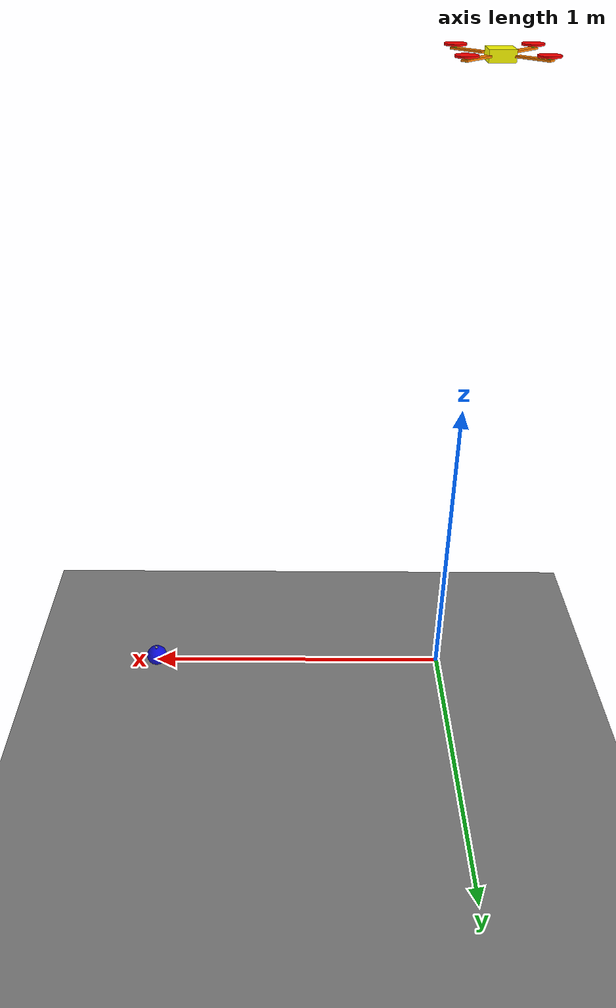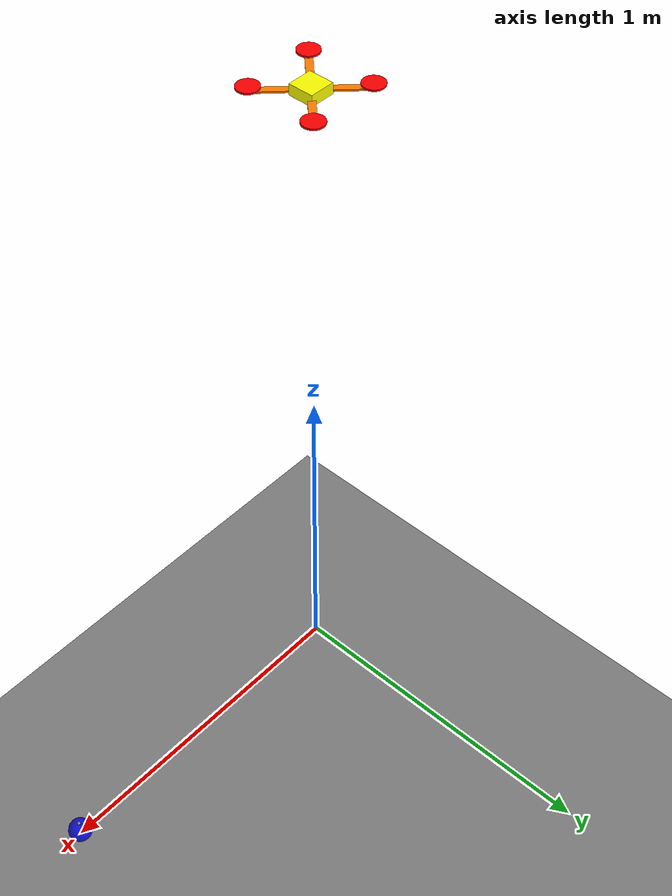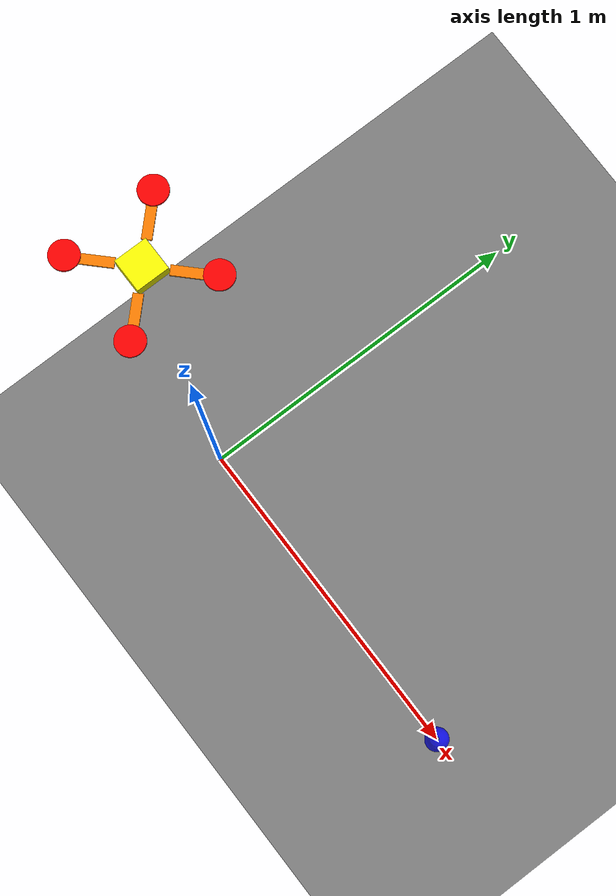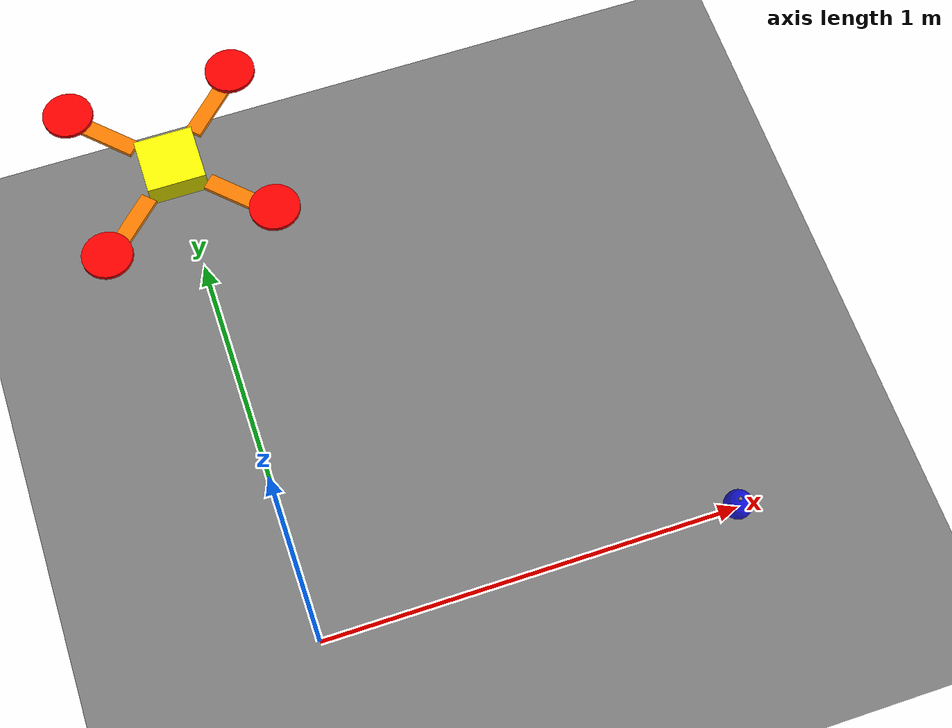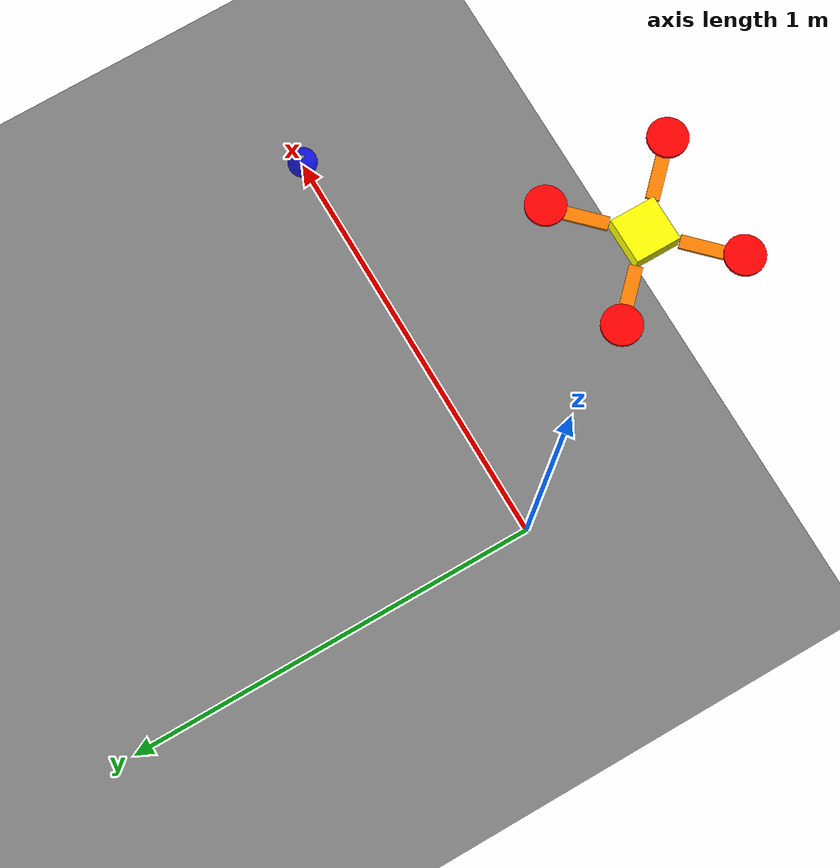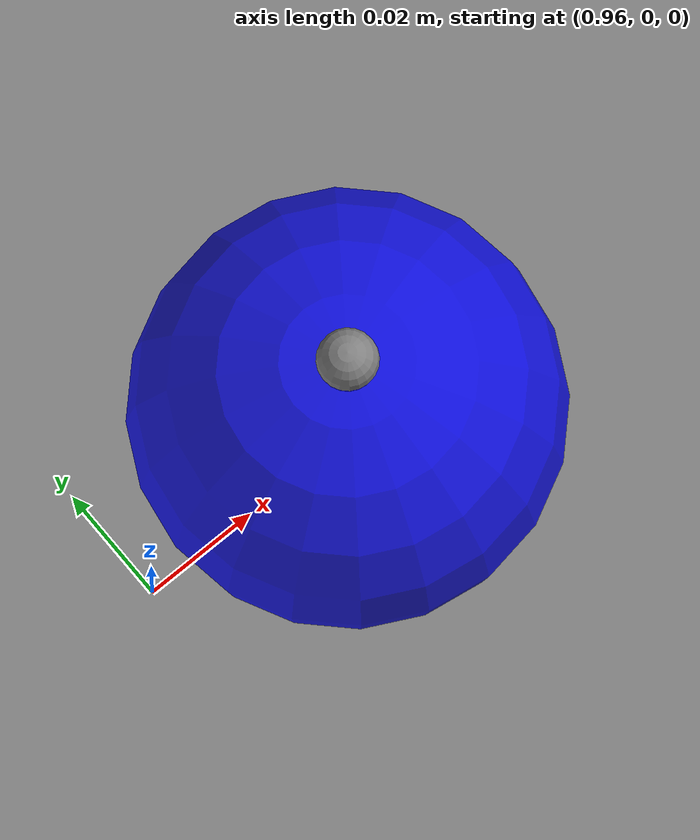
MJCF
<mujoco model="Quadrotor Acro Simulation">
  <compiler angle="radian" meshdir="." />

  <option timestep="0.003" gravity="0 0 0">
    <flag energy="enable" contact="enable"/>
  </option>

  <asset>
    <texture name="texchecker" type="2d" builtin="checker" width="512" height="512" rgb1="0.8 0.8 0.8" rgb2="0.2 0.2 0.2" />
    <material name="matchecker" texture="texchecker" texrepeat="4 4" reflectance="0.2" />
    <mesh name="drone_1_visual_mesh" file="raxl_assembly.obj" scale="0.001 0.001 0.001" />
  </asset>

  <worldbody>
    <light pos="0 0 1.5" dir="0 0 -1" directional="true"/>
    <geom name="floor" type="plane" size="10 10 0.1" material="matchecker" condim="3"/>

    <body name="drone_1" pos="0 0 2" euler="0 0 0">
      <joint name="drone_1" type="free" damping="0.001" armature="0" pos="0 0 0"/>

      <geom name="drone_1_core" type="box" size="0.035 0.035 0.015" rgba="1.0 1.0 0.0 1.0" mass="1.04"/>

      <geom name="drone_1_a00" type="box" pos=".071 0.071 0.0" size="0.05 0.01 0.0025" quat=".924 0 0 0.383" rgba="1 0.5 0 1.0" mass=".035"/>
      <geom name="drone_1_a10" type="box" pos=".071 -0.071 0.0" size="0.05 0.01 0.0025" quat=".383 0 0 0.924" rgba="1 0.5 0 1.0" mass=".035"/>
      <geom name="drone_1_a20" type="box" pos="-0.071 -0.071 0.0" size="0.05 0.01 0.0025" quat="-.383 0 0 0.924" rgba="1 0.5 0 1.0" mass=".035"/>
      <geom name="drone_1_a30" type="box" pos="-.071 0.071 0.0" size="0.05 0.01 0.0025" quat=".924 0 0 -0.383" rgba="1 0.5 0 1.0" mass=".035"/>

      <geom name="drone_1_thruster00" type="cylinder" pos="0.1 0.1 0.01" size="0.03 0.0025" rgba="1 0 0 1" mass=".015"/>
      <geom name="drone_1_thruster10" type="cylinder" pos="0.1 -0.1 0.01" size="0.03 0.0025" rgba="1 0 0 1" mass=".015"/>
      <geom name="drone_1_thruster20" type="cylinder" pos="-0.1 -0.1 0.01" size="0.03 0.0025" rgba="1 0 0 1" mass=".015"/>
      <geom name="drone_1_thruster30" type="cylinder" pos="-0.1 0.1 0.01" size="0.03 0.0025" rgba="1 0 0 1" mass=".015"/>

      <site name="drone_1_imu" pos="0 0 0"/>
      <site name="drone_1_thrust" type="box" pos="0 0 0" size="0.035 0.035 0.015" rgba="0 1 1 0"/>
      <site name="drone_1_rateX" type="box" pos="0 0 0" size="0.035 0.035 0.015" rgba="0 1 1 0"/>
      <site name="drone_1_rateY" type="box" pos="0 0 0" size="0.035 0.035 0.015" rgba="0 1 1 0"/>
      <site name="drone_1_rateZ" type="box" pos="0 0 0" size="0.035 0.035 0.015" rgba="0 1 1 0"/>

      <site name="drone_1_rotor1_site"
            type="sphere"
            pos="0.1 0.1 0.0"
            size="0.005"
            zaxis="0 0 1"
            rgba="0 1 0 1"/>

      <site name="drone_1_rotor2_site"
            type="sphere"
            pos="0.1 -0.1 0.0"
            size="0.005"
            zaxis="0 0 1"
            rgba="0 1 0 1"/>

      <site name="drone_1_rotor3_site"
            type="sphere"
            pos="-0.1 -0.1 0.0"
            size="0.005"
            zaxis="0 0 1"
            rgba="0 1 0 1"/>

      <site name="drone_1_rotor4_site"
            type="sphere"
            pos="-0.1 0.1 0.0"
            size="0.005"
            zaxis="0 0 1"
            rgba="0 1 0 1"/>

      <camera name="drone_1_camera" pos="0.035 0 -0.015" euler="0 0 -1.57"/>
    </body>

    <body name="payload" pos="1 0 0.02">
      <joint type="free" damping="0.2"/>
      <geom type="sphere" size="0.035" rgba="0 0 1 0.8" mass="0.2"/>
      <site name="payload_connection_site" pos="0.0 0.0 0.035"/>
    </body>

  </worldbody>
  <actuator>
    <general name="drone_1_rotor1"
             site="drone_1_rotor1_site"
             gear="0 0 1 0 0 0.015"
             dyntype="filterexact" dynprm="0.025"
             gaintype="fixed" gainprm="1"
             ctrllimited="true" ctrlrange="0 10"
             actlimited="true" actrange="0 10"
             forcelimited="true" forcerange="0 10"
             nsample="4" delay="0.012" interp="zoh"/>

    <general name="drone_1_rotor2"
             site="drone_1_rotor2_site"
             gear="0 0 1 0 0 -0.015"
             dyntype="filterexact" dynprm="0.025"
             gaintype="fixed" gainprm="1"
             ctrllimited="true" ctrlrange="0 10"
             actlimited="true" actrange="0 10"
             forcelimited="true" forcerange="0 10"
             nsample="4" delay="0.012" interp="zoh"/>

    <general name="drone_1_rotor3"
             site="drone_1_rotor3_site"
             gear="0 0 1 0 0 0.015"
             dyntype="filterexact" dynprm="0.025"
             gaintype="fixed" gainprm="1"
             ctrllimited="true" ctrlrange="0 10"
             actlimited="true" actrange="0 10"
             forcelimited="true" forcerange="0 10"
             nsample="4" delay="0.012" interp="zoh"/>

    <general name="drone_1_rotor4"
             site="drone_1_rotor4_site"
             gear="0 0 1 0 0 -0.015"
             dyntype="filterexact" dynprm="0.025"
             gaintype="fixed" gainprm="1"
             ctrllimited="true" ctrlrange="0 10"
             actlimited="true" actrange="0 10"
             forcelimited="true" forcerange="0 10"
             nsample="4" delay="0.012" interp="zoh"/>
  </actuator>

  <sensor>
    <accelerometer name="drone_1_accel" site="drone_1_imu" />
    <gyro name="drone_1_gyro" site="drone_1_imu" />
  </sensor>
</mujoco>
